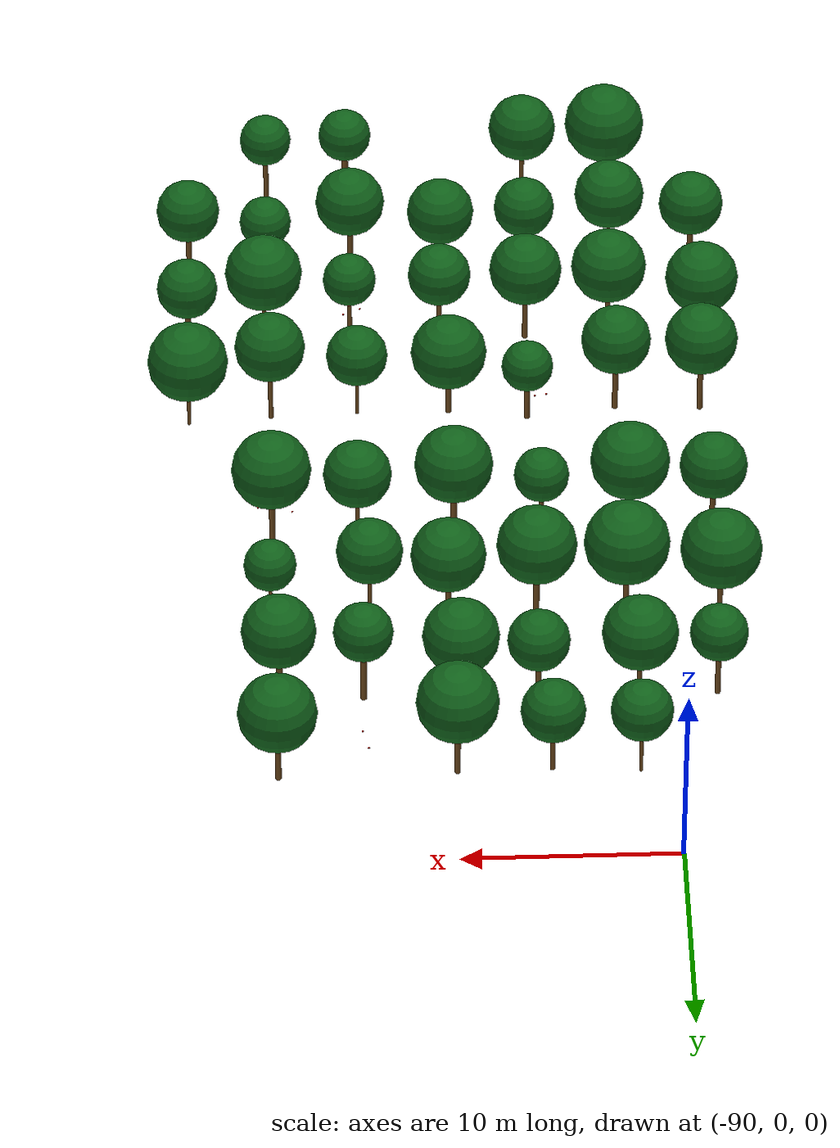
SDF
<sdf version="1.9">
 <world name="cheongsong_orchard">
  <model name="apple_tree_783">
   <static>true</static>
   <pose>-88.29 -43.25 0 0 0 0</pose>
   <link name="link">
    <collision name="trunk_col">
     <pose>0 0 1.25 0 0 0</pose>
     <geometry><cylinder><radius>0.147</radius><length>2.50</length></cylinder></geometry>
    </collision>
    <visual name="trunk_vis">
     <pose>0 0 1.25 0 0 0</pose>
     <geometry><cylinder><radius>0.147</radius><length>2.50</length></cylinder></geometry>
     <material><ambient>0.35 0.22 0.08 1</ambient><diffuse>0.45 0.30 0.12 1</diffuse></material>
    </visual>
    <collision name="canopy_col">
     <pose>0 0 4.37 0 0 0</pose>
     <geometry><sphere><radius>1.87</radius></sphere></geometry>
    </collision>
    <visual name="canopy_vis">
     <pose>0 0 4.37 0 0 0</pose>
     <geometry><sphere><radius>1.87</radius></sphere></geometry>
     <material><ambient>0.04 0.28 0.06 1</ambient><diffuse>0.06 0.38 0.10 1</diffuse></material>
    </visual>
   </link>
  </model>
  <model name="apple_tree_784">
   <static>true</static>
   <pose>-84.37 -42.99 0 0 0 0</pose>
   <link name="link">
    <collision name="trunk_col">
     <pose>0 0 1.42 0 0 0</pose>
     <geometry><cylinder><radius>0.114</radius><length>2.85</length></cylinder></geometry>
    </collision>
    <visual name="trunk_vis">
     <pose>0 0 1.42 0 0 0</pose>
     <geometry><cylinder><radius>0.114</radius><length>2.85</length></cylinder></geometry>
     <material><ambient>0.35 0.22 0.08 1</ambient><diffuse>0.45 0.30 0.12 1</diffuse></material>
    </visual>
    <collision name="canopy_col">
     <pose>0 0 4.43 0 0 0</pose>
     <geometry><sphere><radius>1.58</radius></sphere></geometry>
    </collision>
    <visual name="canopy_vis">
     <pose>0 0 4.43 0 0 0</pose>
     <geometry><sphere><radius>1.58</radius></sphere></geometry>
     <material><ambient>0.04 0.28 0.06 1</ambient><diffuse>0.06 0.38 0.10 1</diffuse></material>
    </visual>
   </link>
  </model>
  <model name="apple_tree_786">
   <static>true</static>
   <pose>-75.95 -43.21 0 0 0 0</pose>
   <link name="link">
    <collision name="trunk_col">
     <pose>0 0 1.37 0 0 0</pose>
     <geometry><cylinder><radius>0.145</radius><length>2.74</length></cylinder></geometry>
    </collision>
    <visual name="trunk_vis">
     <pose>0 0 1.37 0 0 0</pose>
     <geometry><cylinder><radius>0.145</radius><length>2.74</length></cylinder></geometry>
     <material><ambient>0.35 0.22 0.08 1</ambient><diffuse>0.45 0.30 0.12 1</diffuse></material>
    </visual>
    <collision name="canopy_col">
     <pose>0 0 3.99 0 0 0</pose>
     <geometry><sphere><radius>1.24</radius></sphere></geometry>
    </collision>
    <visual name="canopy_vis">
     <pose>0 0 3.99 0 0 0</pose>
     <geometry><sphere><radius>1.24</radius></sphere></geometry>
     <material><ambient>0.04 0.28 0.06 1</ambient><diffuse>0.06 0.38 0.10 1</diffuse></material>
    </visual>
   </link>
  </model>
  <model name="apple_tree_787">
   <static>true</static>
   <pose>-72.18 -43.15 0 0 0 0</pose>
   <link name="link">
    <collision name="trunk_col">
     <pose>0 0 1.31 0 0 0</pose>
     <geometry><cylinder><radius>0.119</radius><length>2.61</length></cylinder></geometry>
    </collision>
    <visual name="trunk_vis">
     <pose>0 0 1.31 0 0 0</pose>
     <geometry><cylinder><radius>0.119</radius><length>2.61</length></cylinder></geometry>
     <material><ambient>0.35 0.22 0.08 1</ambient><diffuse>0.45 0.30 0.12 1</diffuse></material>
    </visual>
    <collision name="canopy_col">
     <pose>0 0 3.83 0 0 0</pose>
     <geometry><sphere><radius>1.21</radius></sphere></geometry>
    </collision>
    <visual name="canopy_vis">
     <pose>0 0 3.83 0 0 0</pose>
     <geometry><sphere><radius>1.21</radius></sphere></geometry>
     <material><ambient>0.04 0.28 0.06 1</ambient><diffuse>0.06 0.38 0.10 1</diffuse></material>
    </visual>
   </link>
  </model>
  <model name="apple_tree_841">
   <static>true</static>
   <pose>-92.17 -38.23 0 0 0 0</pose>
   <link name="link">
    <collision name="trunk_col">
     <pose>0 0 1.12 0 0 0</pose>
     <geometry><cylinder><radius>0.136</radius><length>2.23</length></cylinder></geometry>
    </collision>
    <visual name="trunk_vis">
     <pose>0 0 1.12 0 0 0</pose>
     <geometry><cylinder><radius>0.136</radius><length>2.23</length></cylinder></geometry>
     <material><ambient>0.35 0.22 0.08 1</ambient><diffuse>0.45 0.30 0.12 1</diffuse></material>
    </visual>
    <collision name="canopy_col">
     <pose>0 0 3.74 0 0 0</pose>
     <geometry><sphere><radius>1.51</radius></sphere></geometry>
    </collision>
    <visual name="canopy_vis">
     <pose>0 0 3.74 0 0 0</pose>
     <geometry><sphere><radius>1.51</radius></sphere></geometry>
     <material><ambient>0.04 0.28 0.06 1</ambient><diffuse>0.06 0.38 0.10 1</diffuse></material>
    </visual>
   </link>
  </model>
  <model name="apple_tree_842">
   <static>true</static>
   <pose>-88.30 -38.17 0 0 0 0</pose>
   <link name="link">
    <collision name="trunk_col">
     <pose>0 0 1.44 0 0 0</pose>
     <geometry><cylinder><radius>0.087</radius><length>2.88</length></cylinder></geometry>
    </collision>
    <visual name="trunk_vis">
     <pose>0 0 1.44 0 0 0</pose>
     <geometry><cylinder><radius>0.087</radius><length>2.88</length></cylinder></geometry>
     <material><ambient>0.35 0.22 0.08 1</ambient><diffuse>0.45 0.30 0.12 1</diffuse></material>
    </visual>
    <collision name="canopy_col">
     <pose>0 0 4.51 0 0 0</pose>
     <geometry><sphere><radius>1.63</radius></sphere></geometry>
    </collision>
    <visual name="canopy_vis">
     <pose>0 0 4.51 0 0 0</pose>
     <geometry><sphere><radius>1.63</radius></sphere></geometry>
     <material><ambient>0.04 0.28 0.06 1</ambient><diffuse>0.06 0.38 0.10 1</diffuse></material>
    </visual>
   </link>
  </model>
  <model name="apple_tree_843">
   <static>true</static>
   <pose>-84.28 -37.98 0 0 0 0</pose>
   <link name="link">
    <collision name="trunk_col">
     <pose>0 0 1.27 0 0 0</pose>
     <geometry><cylinder><radius>0.126</radius><length>2.55</length></cylinder></geometry>
    </collision>
    <visual name="trunk_vis">
     <pose>0 0 1.27 0 0 0</pose>
     <geometry><cylinder><radius>0.126</radius><length>2.55</length></cylinder></geometry>
     <material><ambient>0.35 0.22 0.08 1</ambient><diffuse>0.45 0.30 0.12 1</diffuse></material>
    </visual>
    <collision name="canopy_col">
     <pose>0 0 3.96 0 0 0</pose>
     <geometry><sphere><radius>1.42</radius></sphere></geometry>
    </collision>
    <visual name="canopy_vis">
     <pose>0 0 3.96 0 0 0</pose>
     <geometry><sphere><radius>1.42</radius></sphere></geometry>
     <material><ambient>0.04 0.28 0.06 1</ambient><diffuse>0.06 0.38 0.10 1</diffuse></material>
    </visual>
   </link>
  </model>
  <model name="apple_tree_844">
   <static>true</static>
   <pose>-80.33 -38.01 0 0 0 0</pose>
   <link name="link">
    <collision name="trunk_col">
     <pose>0 0 1.10 0 0 0</pose>
     <geometry><cylinder><radius>0.121</radius><length>2.20</length></cylinder></geometry>
    </collision>
    <visual name="trunk_vis">
     <pose>0 0 1.10 0 0 0</pose>
     <geometry><cylinder><radius>0.121</radius><length>2.20</length></cylinder></geometry>
     <material><ambient>0.35 0.22 0.08 1</ambient><diffuse>0.45 0.30 0.12 1</diffuse></material>
    </visual>
    <collision name="canopy_col">
     <pose>0 0 3.77 0 0 0</pose>
     <geometry><sphere><radius>1.57</radius></sphere></geometry>
    </collision>
    <visual name="canopy_vis">
     <pose>0 0 3.77 0 0 0</pose>
     <geometry><sphere><radius>1.57</radius></sphere></geometry>
     <material><ambient>0.04 0.28 0.06 1</ambient><diffuse>0.06 0.38 0.10 1</diffuse></material>
    </visual>
   </link>
  </model>
  <model name="apple_tree_845">
   <static>true</static>
   <pose>-76.08 -38.34 0 0 0 0</pose>
   <link name="link">
    <collision name="trunk_col">
     <pose>0 0 1.30 0 0 0</pose>
     <geometry><cylinder><radius>0.134</radius><length>2.61</length></cylinder></geometry>
    </collision>
    <visual name="trunk_vis">
     <pose>0 0 1.30 0 0 0</pose>
     <geometry><cylinder><radius>0.134</radius><length>2.61</length></cylinder></geometry>
     <material><ambient>0.35 0.22 0.08 1</ambient><diffuse>0.45 0.30 0.12 1</diffuse></material>
    </visual>
    <collision name="canopy_col">
     <pose>0 0 4.22 0 0 0</pose>
     <geometry><sphere><radius>1.62</radius></sphere></geometry>
    </collision>
    <visual name="canopy_vis">
     <pose>0 0 4.22 0 0 0</pose>
     <geometry><sphere><radius>1.62</radius></sphere></geometry>
     <material><ambient>0.04 0.28 0.06 1</ambient><diffuse>0.06 0.38 0.10 1</diffuse></material>
    </visual>
   </link>
  </model>
  <model name="apple_tree_846">
   <static>true</static>
   <pose>-72.08 -37.89 0 0 0 0</pose>
   <link name="link">
    <collision name="trunk_col">
     <pose>0 0 1.13 0 0 0</pose>
     <geometry><cylinder><radius>0.081</radius><length>2.26</length></cylinder></geometry>
    </collision>
    <visual name="trunk_vis">
     <pose>0 0 1.13 0 0 0</pose>
     <geometry><cylinder><radius>0.081</radius><length>2.26</length></cylinder></geometry>
     <material><ambient>0.35 0.22 0.08 1</ambient><diffuse>0.45 0.30 0.12 1</diffuse></material>
    </visual>
    <collision name="canopy_col">
     <pose>0 0 3.46 0 0 0</pose>
     <geometry><sphere><radius>1.21</radius></sphere></geometry>
    </collision>
    <visual name="canopy_vis">
     <pose>0 0 3.46 0 0 0</pose>
     <geometry><sphere><radius>1.21</radius></sphere></geometry>
     <material><ambient>0.04 0.28 0.06 1</ambient><diffuse>0.06 0.38 0.10 1</diffuse></material>
    </visual>
   </link>
  </model>
  <model name="apple_tree_847">
   <static>true</static>
   <pose>-68.45 -38.24 0 0 0 0</pose>
   <link name="link">
    <collision name="trunk_col">
     <pose>0 0 1.23 0 0 0</pose>
     <geometry><cylinder><radius>0.128</radius><length>2.46</length></cylinder></geometry>
    </collision>
    <visual name="trunk_vis">
     <pose>0 0 1.23 0 0 0</pose>
     <geometry><cylinder><radius>0.128</radius><length>2.46</length></cylinder></geometry>
     <material><ambient>0.35 0.22 0.08 1</ambient><diffuse>0.45 0.30 0.12 1</diffuse></material>
    </visual>
    <collision name="canopy_col">
     <pose>0 0 3.94 0 0 0</pose>
     <geometry><sphere><radius>1.48</radius></sphere></geometry>
    </collision>
    <visual name="canopy_vis">
     <pose>0 0 3.94 0 0 0</pose>
     <geometry><sphere><radius>1.48</radius></sphere></geometry>
     <material><ambient>0.04 0.28 0.06 1</ambient><diffuse>0.06 0.38 0.10 1</diffuse></material>
    </visual>
   </link>
  </model>
  <model name="apple_tree_896">
   <static>true</static>
   <pose>-92.41 -33.07 0 0 0 0</pose>
   <link name="link">
    <collision name="trunk_col">
     <pose>0 0 1.07 0 0 0</pose>
     <geometry><cylinder><radius>0.141</radius><length>2.13</length></cylinder></geometry>
    </collision>
    <visual name="trunk_vis">
     <pose>0 0 1.07 0 0 0</pose>
     <geometry><cylinder><radius>0.141</radius><length>2.13</length></cylinder></geometry>
     <material><ambient>0.35 0.22 0.08 1</ambient><diffuse>0.45 0.30 0.12 1</diffuse></material>
    </visual>
    <collision name="canopy_col">
     <pose>0 0 3.83 0 0 0</pose>
     <geometry><sphere><radius>1.70</radius></sphere></geometry>
    </collision>
    <visual name="canopy_vis">
     <pose>0 0 3.83 0 0 0</pose>
     <geometry><sphere><radius>1.70</radius></sphere></geometry>
     <material><ambient>0.04 0.28 0.06 1</ambient><diffuse>0.06 0.38 0.10 1</diffuse></material>
    </visual>
   </link>
  </model>
  <model name="apple_tree_897">
   <static>true</static>
   <pose>-88.07 -33.49 0 0 0 0</pose>
   <link name="link">
    <collision name="trunk_col">
     <pose>0 0 1.28 0 0 0</pose>
     <geometry><cylinder><radius>0.107</radius><length>2.56</length></cylinder></geometry>
    </collision>
    <visual name="trunk_vis">
     <pose>0 0 1.28 0 0 0</pose>
     <geometry><cylinder><radius>0.107</radius><length>2.56</length></cylinder></geometry>
     <material><ambient>0.35 0.22 0.08 1</ambient><diffuse>0.45 0.30 0.12 1</diffuse></material>
    </visual>
    <collision name="canopy_col">
     <pose>0 0 4.31 0 0 0</pose>
     <geometry><sphere><radius>1.75</radius></sphere></geometry>
    </collision>
    <visual name="canopy_vis">
     <pose>0 0 4.31 0 0 0</pose>
     <geometry><sphere><radius>1.75</radius></sphere></geometry>
     <material><ambient>0.04 0.28 0.06 1</ambient><diffuse>0.06 0.38 0.10 1</diffuse></material>
    </visual>
   </link>
  </model>
  <model name="apple_tree_898">
   <static>true</static>
   <pose>-84.17 -33.31 0 0 0 0</pose>
   <link name="link">
    <collision name="trunk_col">
     <pose>0 0 1.34 0 0 0</pose>
     <geometry><cylinder><radius>0.129</radius><length>2.68</length></cylinder></geometry>
    </collision>
    <visual name="trunk_vis">
     <pose>0 0 1.34 0 0 0</pose>
     <geometry><cylinder><radius>0.129</radius><length>2.68</length></cylinder></geometry>
     <material><ambient>0.35 0.22 0.08 1</ambient><diffuse>0.45 0.30 0.12 1</diffuse></material>
    </visual>
    <collision name="canopy_col">
     <pose>0 0 4.37 0 0 0</pose>
     <geometry><sphere><radius>1.69</radius></sphere></geometry>
    </collision>
    <visual name="canopy_vis">
     <pose>0 0 4.37 0 0 0</pose>
     <geometry><sphere><radius>1.69</radius></sphere></geometry>
     <material><ambient>0.04 0.28 0.06 1</ambient><diffuse>0.06 0.38 0.10 1</diffuse></material>
    </visual>
   </link>
  </model>
  <model name="apple_tree_899">
   <static>true</static>
   <pose>-80.14 -33.37 0 0 0 0</pose>
   <link name="link">
    <collision name="trunk_col">
     <pose>0 0 1.31 0 0 0</pose>
     <geometry><cylinder><radius>0.123</radius><length>2.62</length></cylinder></geometry>
    </collision>
    <visual name="trunk_vis">
     <pose>0 0 1.31 0 0 0</pose>
     <geometry><cylinder><radius>0.123</radius><length>2.62</length></cylinder></geometry>
     <material><ambient>0.35 0.22 0.08 1</ambient><diffuse>0.45 0.30 0.12 1</diffuse></material>
    </visual>
    <collision name="canopy_col">
     <pose>0 0 4.09 0 0 0</pose>
     <geometry><sphere><radius>1.47</radius></sphere></geometry>
    </collision>
    <visual name="canopy_vis">
     <pose>0 0 4.09 0 0 0</pose>
     <geometry><sphere><radius>1.47</radius></sphere></geometry>
     <material><ambient>0.04 0.28 0.06 1</ambient><diffuse>0.06 0.38 0.10 1</diffuse></material>
    </visual>
   </link>
  </model>
  <model name="apple_tree_900">
   <static>true</static>
   <pose>-75.93 -33.18 0 0 0 0</pose>
   <link name="link">
    <collision name="trunk_col">
     <pose>0 0 1.42 0 0 0</pose>
     <geometry><cylinder><radius>0.105</radius><length>2.84</length></cylinder></geometry>
    </collision>
    <visual name="trunk_vis">
     <pose>0 0 1.42 0 0 0</pose>
     <geometry><cylinder><radius>0.105</radius><length>2.84</length></cylinder></geometry>
     <material><ambient>0.35 0.22 0.08 1</ambient><diffuse>0.45 0.30 0.12 1</diffuse></material>
    </visual>
    <collision name="canopy_col">
     <pose>0 0 4.08 0 0 0</pose>
     <geometry><sphere><radius>1.24</radius></sphere></geometry>
    </collision>
    <visual name="canopy_vis">
     <pose>0 0 4.08 0 0 0</pose>
     <geometry><sphere><radius>1.24</radius></sphere></geometry>
     <material><ambient>0.04 0.28 0.06 1</ambient><diffuse>0.06 0.38 0.10 1</diffuse></material>
    </visual>
   </link>
  </model>
  <model name="apple_tree_901">
   <static>true</static>
   <pose>-71.93 -33.14 0 0 0 0</pose>
   <link name="link">
    <collision name="trunk_col">
     <pose>0 0 1.44 0 0 0</pose>
     <geometry><cylinder><radius>0.095</radius><length>2.89</length></cylinder></geometry>
    </collision>
    <visual name="trunk_vis">
     <pose>0 0 1.44 0 0 0</pose>
     <geometry><cylinder><radius>0.095</radius><length>2.89</length></cylinder></geometry>
     <material><ambient>0.35 0.22 0.08 1</ambient><diffuse>0.45 0.30 0.12 1</diffuse></material>
    </visual>
    <collision name="canopy_col">
     <pose>0 0 4.68 0 0 0</pose>
     <geometry><sphere><radius>1.80</radius></sphere></geometry>
    </collision>
    <visual name="canopy_vis">
     <pose>0 0 4.68 0 0 0</pose>
     <geometry><sphere><radius>1.80</radius></sphere></geometry>
     <material><ambient>0.04 0.28 0.06 1</ambient><diffuse>0.06 0.38 0.10 1</diffuse></material>
    </visual>
   </link>
  </model>
  <model name="apple_tree_902">
   <static>true</static>
   <pose>-68.35 -33.28 0 0 0 0</pose>
   <link name="link">
    <collision name="trunk_col">
     <pose>0 0 1.11 0 0 0</pose>
     <geometry><cylinder><radius>0.128</radius><length>2.21</length></cylinder></geometry>
    </collision>
    <visual name="trunk_vis">
     <pose>0 0 1.11 0 0 0</pose>
     <geometry><cylinder><radius>0.128</radius><length>2.21</length></cylinder></geometry>
     <material><ambient>0.35 0.22 0.08 1</ambient><diffuse>0.45 0.30 0.12 1</diffuse></material>
    </visual>
    <collision name="canopy_col">
     <pose>0 0 3.63 0 0 0</pose>
     <geometry><sphere><radius>1.42</radius></sphere></geometry>
    </collision>
    <visual name="canopy_vis">
     <pose>0 0 3.63 0 0 0</pose>
     <geometry><sphere><radius>1.42</radius></sphere></geometry>
     <material><ambient>0.04 0.28 0.06 1</ambient><diffuse>0.06 0.38 0.10 1</diffuse></material>
    </visual>
   </link>
  </model>
  <model name="apple_tree_948">
   <static>true</static>
   <pose>-92.14 -28.28 0 0 0 0</pose>
   <link name="link">
    <collision name="trunk_col">
     <pose>0 0 1.39 0 0 0</pose>
     <geometry><cylinder><radius>0.135</radius><length>2.78</length></cylinder></geometry>
    </collision>
    <visual name="trunk_vis">
     <pose>0 0 1.39 0 0 0</pose>
     <geometry><cylinder><radius>0.135</radius><length>2.78</length></cylinder></geometry>
     <material><ambient>0.35 0.22 0.08 1</ambient><diffuse>0.45 0.30 0.12 1</diffuse></material>
    </visual>
    <collision name="canopy_col">
     <pose>0 0 4.47 0 0 0</pose>
     <geometry><sphere><radius>1.69</radius></sphere></geometry>
    </collision>
    <visual name="canopy_vis">
     <pose>0 0 4.47 0 0 0</pose>
     <geometry><sphere><radius>1.69</radius></sphere></geometry>
     <material><ambient>0.04 0.28 0.06 1</ambient><diffuse>0.06 0.38 0.10 1</diffuse></material>
    </visual>
   </link>
  </model>
  <model name="apple_tree_949">
   <static>true</static>
   <pose>-88.19 -28.45 0 0 0 0</pose>
   <link name="link">
    <collision name="trunk_col">
     <pose>0 0 1.37 0 0 0</pose>
     <geometry><cylinder><radius>0.133</radius><length>2.75</length></cylinder></geometry>
    </collision>
    <visual name="trunk_vis">
     <pose>0 0 1.37 0 0 0</pose>
     <geometry><cylinder><radius>0.133</radius><length>2.75</length></cylinder></geometry>
     <material><ambient>0.35 0.22 0.08 1</ambient><diffuse>0.45 0.30 0.12 1</diffuse></material>
    </visual>
    <collision name="canopy_col">
     <pose>0 0 4.37 0 0 0</pose>
     <geometry><sphere><radius>1.62</radius></sphere></geometry>
    </collision>
    <visual name="canopy_vis">
     <pose>0 0 4.37 0 0 0</pose>
     <geometry><sphere><radius>1.62</radius></sphere></geometry>
     <material><ambient>0.04 0.28 0.06 1</ambient><diffuse>0.06 0.38 0.10 1</diffuse></material>
    </visual>
   </link>
  </model>
  <model name="apple_tree_950">
   <static>true</static>
   <pose>-84.06 -27.91 0 0 0 0</pose>
   <link name="link">
    <collision name="trunk_col">
     <pose>0 0 1.06 0 0 0</pose>
     <geometry><cylinder><radius>0.133</radius><length>2.12</length></cylinder></geometry>
    </collision>
    <visual name="trunk_vis">
     <pose>0 0 1.06 0 0 0</pose>
     <geometry><cylinder><radius>0.133</radius><length>2.12</length></cylinder></geometry>
     <material><ambient>0.35 0.22 0.08 1</ambient><diffuse>0.45 0.30 0.12 1</diffuse></material>
    </visual>
    <collision name="canopy_col">
     <pose>0 0 3.32 0 0 0</pose>
     <geometry><sphere><radius>1.20</radius></sphere></geometry>
    </collision>
    <visual name="canopy_vis">
     <pose>0 0 3.32 0 0 0</pose>
     <geometry><sphere><radius>1.20</radius></sphere></geometry>
     <material><ambient>0.04 0.28 0.06 1</ambient><diffuse>0.06 0.38 0.10 1</diffuse></material>
    </visual>
   </link>
  </model>
  <model name="apple_tree_951">
   <static>true</static>
   <pose>-80.42 -28.42 0 0 0 0</pose>
   <link name="link">
    <collision name="trunk_col">
     <pose>0 0 1.04 0 0 0</pose>
     <geometry><cylinder><radius>0.133</radius><length>2.08</length></cylinder></geometry>
    </collision>
    <visual name="trunk_vis">
     <pose>0 0 1.04 0 0 0</pose>
     <geometry><cylinder><radius>0.133</radius><length>2.08</length></cylinder></geometry>
     <material><ambient>0.35 0.22 0.08 1</ambient><diffuse>0.45 0.30 0.12 1</diffuse></material>
    </visual>
    <collision name="canopy_col">
     <pose>0 0 3.85 0 0 0</pose>
     <geometry><sphere><radius>1.76</radius></sphere></geometry>
    </collision>
    <visual name="canopy_vis">
     <pose>0 0 3.85 0 0 0</pose>
     <geometry><sphere><radius>1.76</radius></sphere></geometry>
     <material><ambient>0.04 0.28 0.06 1</ambient><diffuse>0.06 0.38 0.10 1</diffuse></material>
    </visual>
   </link>
  </model>
  <model name="apple_tree_952">
   <static>true</static>
   <pose>-76.16 -28.47 0 0 0 0</pose>
   <link name="link">
    <collision name="trunk_col">
     <pose>0 0 1.13 0 0 0</pose>
     <geometry><cylinder><radius>0.088</radius><length>2.27</length></cylinder></geometry>
    </collision>
    <visual name="trunk_vis">
     <pose>0 0 1.13 0 0 0</pose>
     <geometry><cylinder><radius>0.088</radius><length>2.27</length></cylinder></geometry>
     <material><ambient>0.35 0.22 0.08 1</ambient><diffuse>0.45 0.30 0.12 1</diffuse></material>
    </visual>
    <collision name="canopy_col">
     <pose>0 0 3.70 0 0 0</pose>
     <geometry><sphere><radius>1.43</radius></sphere></geometry>
    </collision>
    <visual name="canopy_vis">
     <pose>0 0 3.70 0 0 0</pose>
     <geometry><sphere><radius>1.43</radius></sphere></geometry>
     <material><ambient>0.04 0.28 0.06 1</ambient><diffuse>0.06 0.38 0.10 1</diffuse></material>
    </visual>
   </link>
  </model>
  <model name="apple_tree_953">
   <static>true</static>
   <pose>-72.13 -28.30 0 0 0 0</pose>
   <link name="link">
    <collision name="trunk_col">
     <pose>0 0 1.45 0 0 0</pose>
     <geometry><cylinder><radius>0.111</radius><length>2.90</length></cylinder></geometry>
    </collision>
    <visual name="trunk_vis">
     <pose>0 0 1.45 0 0 0</pose>
     <geometry><cylinder><radius>0.111</radius><length>2.90</length></cylinder></geometry>
     <material><ambient>0.35 0.22 0.08 1</ambient><diffuse>0.45 0.30 0.12 1</diffuse></material>
    </visual>
    <collision name="canopy_col">
     <pose>0 0 4.54 0 0 0</pose>
     <geometry><sphere><radius>1.64</radius></sphere></geometry>
    </collision>
    <visual name="canopy_vis">
     <pose>0 0 4.54 0 0 0</pose>
     <geometry><sphere><radius>1.64</radius></sphere></geometry>
     <material><ambient>0.04 0.28 0.06 1</ambient><diffuse>0.06 0.38 0.10 1</diffuse></material>
    </visual>
   </link>
  </model>
  <model name="apple_tree_954">
   <static>true</static>
   <pose>-68.32 -27.98 0 0 0 0</pose>
   <link name="link">
    <collision name="trunk_col">
     <pose>0 0 1.07 0 0 0</pose>
     <geometry><cylinder><radius>0.085</radius><length>2.13</length></cylinder></geometry>
    </collision>
    <visual name="trunk_vis">
     <pose>0 0 1.07 0 0 0</pose>
     <geometry><cylinder><radius>0.085</radius><length>2.13</length></cylinder></geometry>
     <material><ambient>0.35 0.22 0.08 1</ambient><diffuse>0.45 0.30 0.12 1</diffuse></material>
    </visual>
    <collision name="canopy_col">
     <pose>0 0 4.01 0 0 0</pose>
     <geometry><sphere><radius>1.87</radius></sphere></geometry>
    </collision>
    <visual name="canopy_vis">
     <pose>0 0 4.01 0 0 0</pose>
     <geometry><sphere><radius>1.87</radius></sphere></geometry>
     <material><ambient>0.04 0.28 0.06 1</ambient><diffuse>0.06 0.38 0.10 1</diffuse></material>
    </visual>
   </link>
  </model>
  <model name="apple_tree_1005">
   <static>true</static>
   <pose>-92.28 -20.13 0 0 0 0</pose>
   <link name="link">
    <collision name="trunk_col">
     <pose>0 0 1.37 0 0 0</pose>
     <geometry><cylinder><radius>0.132</radius><length>2.74</length></cylinder></geometry>
    </collision>
    <visual name="trunk_vis">
     <pose>0 0 1.37 0 0 0</pose>
     <geometry><cylinder><radius>0.132</radius><length>2.74</length></cylinder></geometry>
     <material><ambient>0.35 0.22 0.08 1</ambient><diffuse>0.45 0.30 0.12 1</diffuse></material>
    </visual>
    <collision name="canopy_col">
     <pose>0 0 4.31 0 0 0</pose>
     <geometry><sphere><radius>1.56</radius></sphere></geometry>
    </collision>
    <visual name="canopy_vis">
     <pose>0 0 4.31 0 0 0</pose>
     <geometry><sphere><radius>1.56</radius></sphere></geometry>
     <material><ambient>0.04 0.28 0.06 1</ambient><diffuse>0.06 0.38 0.10 1</diffuse></material>
    </visual>
   </link>
  </model>
  <model name="apple_tree_1006">
   <static>true</static>
   <pose>-88.47 -20.46 0 0 0 0</pose>
   <link name="link">
    <collision name="trunk_col">
     <pose>0 0 1.29 0 0 0</pose>
     <geometry><cylinder><radius>0.124</radius><length>2.58</length></cylinder></geometry>
    </collision>
    <visual name="trunk_vis">
     <pose>0 0 1.29 0 0 0</pose>
     <geometry><cylinder><radius>0.124</radius><length>2.58</length></cylinder></geometry>
     <material><ambient>0.35 0.22 0.08 1</ambient><diffuse>0.45 0.30 0.12 1</diffuse></material>
    </visual>
    <collision name="canopy_col">
     <pose>0 0 4.41 0 0 0</pose>
     <geometry><sphere><radius>1.83</radius></sphere></geometry>
    </collision>
    <visual name="canopy_vis">
     <pose>0 0 4.41 0 0 0</pose>
     <geometry><sphere><radius>1.83</radius></sphere></geometry>
     <material><ambient>0.04 0.28 0.06 1</ambient><diffuse>0.06 0.38 0.10 1</diffuse></material>
    </visual>
   </link>
  </model>
  <model name="apple_tree_1007">
   <static>true</static>
   <pose>-84.41 -20.25 0 0 0 0</pose>
   <link name="link">
    <collision name="trunk_col">
     <pose>0 0 1.28 0 0 0</pose>
     <geometry><cylinder><radius>0.102</radius><length>2.56</length></cylinder></geometry>
    </collision>
    <visual name="trunk_vis">
     <pose>0 0 1.28 0 0 0</pose>
     <geometry><cylinder><radius>0.102</radius><length>2.56</length></cylinder></geometry>
     <material><ambient>0.35 0.22 0.08 1</ambient><diffuse>0.45 0.30 0.12 1</diffuse></material>
    </visual>
    <collision name="canopy_col">
     <pose>0 0 3.83 0 0 0</pose>
     <geometry><sphere><radius>1.27</radius></sphere></geometry>
    </collision>
    <visual name="canopy_vis">
     <pose>0 0 3.83 0 0 0</pose>
     <geometry><sphere><radius>1.27</radius></sphere></geometry>
     <material><ambient>0.04 0.28 0.06 1</ambient><diffuse>0.06 0.38 0.10 1</diffuse></material>
    </visual>
   </link>
  </model>
  <model name="apple_tree_1008">
   <static>true</static>
   <pose>-80.39 -20.18 0 0 0 0</pose>
   <link name="link">
    <collision name="trunk_col">
     <pose>0 0 1.45 0 0 0</pose>
     <geometry><cylinder><radius>0.138</radius><length>2.90</length></cylinder></geometry>
    </collision>
    <visual name="trunk_vis">
     <pose>0 0 1.45 0 0 0</pose>
     <geometry><cylinder><radius>0.138</radius><length>2.90</length></cylinder></geometry>
     <material><ambient>0.35 0.22 0.08 1</ambient><diffuse>0.45 0.30 0.12 1</diffuse></material>
    </visual>
    <collision name="canopy_col">
     <pose>0 0 4.71 0 0 0</pose>
     <geometry><sphere><radius>1.81</radius></sphere></geometry>
    </collision>
    <visual name="canopy_vis">
     <pose>0 0 4.71 0 0 0</pose>
     <geometry><sphere><radius>1.81</radius></sphere></geometry>
     <material><ambient>0.04 0.28 0.06 1</ambient><diffuse>0.06 0.38 0.10 1</diffuse></material>
    </visual>
   </link>
  </model>
  <model name="apple_tree_1009">
   <static>true</static>
   <pose>-75.98 -20.08 0 0 0 0</pose>
   <link name="link">
    <collision name="trunk_col">
     <pose>0 0 1.36 0 0 0</pose>
     <geometry><cylinder><radius>0.102</radius><length>2.72</length></cylinder></geometry>
    </collision>
    <visual name="trunk_vis">
     <pose>0 0 1.36 0 0 0</pose>
     <geometry><cylinder><radius>0.102</radius><length>2.72</length></cylinder></geometry>
     <material><ambient>0.35 0.22 0.08 1</ambient><diffuse>0.45 0.30 0.12 1</diffuse></material>
    </visual>
    <collision name="canopy_col">
     <pose>0 0 4.31 0 0 0</pose>
     <geometry><sphere><radius>1.58</radius></sphere></geometry>
    </collision>
    <visual name="canopy_vis">
     <pose>0 0 4.31 0 0 0</pose>
     <geometry><sphere><radius>1.58</radius></sphere></geometry>
     <material><ambient>0.04 0.28 0.06 1</ambient><diffuse>0.06 0.38 0.10 1</diffuse></material>
    </visual>
   </link>
  </model>
  <model name="apple_tree_1010">
   <static>true</static>
   <pose>-72.05 -20.33 0 0 0 0</pose>
   <link name="link">
    <collision name="trunk_col">
     <pose>0 0 1.31 0 0 0</pose>
     <geometry><cylinder><radius>0.138</radius><length>2.62</length></cylinder></geometry>
    </collision>
    <visual name="trunk_vis">
     <pose>0 0 1.31 0 0 0</pose>
     <geometry><cylinder><radius>0.138</radius><length>2.62</length></cylinder></geometry>
     <material><ambient>0.35 0.22 0.08 1</ambient><diffuse>0.45 0.30 0.12 1</diffuse></material>
    </visual>
    <collision name="canopy_col">
     <pose>0 0 4.46 0 0 0</pose>
     <geometry><sphere><radius>1.84</radius></sphere></geometry>
    </collision>
    <visual name="canopy_vis">
     <pose>0 0 4.46 0 0 0</pose>
     <geometry><sphere><radius>1.84</radius></sphere></geometry>
     <material><ambient>0.04 0.28 0.06 1</ambient><diffuse>0.06 0.38 0.10 1</diffuse></material>
    </visual>
   </link>
  </model>
  <model name="apple_tree_1064">
   <static>true</static>
   <pose>-92.36 -14.94 0 0 0 0</pose>
   <link name="link">
    <collision name="trunk_col">
     <pose>0 0 1.14 0 0 0</pose>
     <geometry><cylinder><radius>0.122</radius><length>2.28</length></cylinder></geometry>
    </collision>
    <visual name="trunk_vis">
     <pose>0 0 1.14 0 0 0</pose>
     <geometry><cylinder><radius>0.122</radius><length>2.28</length></cylinder></geometry>
     <material><ambient>0.35 0.22 0.08 1</ambient><diffuse>0.45 0.30 0.12 1</diffuse></material>
    </visual>
    <collision name="canopy_col">
     <pose>0 0 4.15 0 0 0</pose>
     <geometry><sphere><radius>1.87</radius></sphere></geometry>
    </collision>
    <visual name="canopy_vis">
     <pose>0 0 4.15 0 0 0</pose>
     <geometry><sphere><radius>1.87</radius></sphere></geometry>
     <material><ambient>0.04 0.28 0.06 1</ambient><diffuse>0.06 0.38 0.10 1</diffuse></material>
    </visual>
   </link>
  </model>
  <model name="apple_tree_1065">
   <static>true</static>
   <pose>-88.10 -15.41 0 0 0 0</pose>
   <link name="link">
    <collision name="trunk_col">
     <pose>0 0 1.12 0 0 0</pose>
     <geometry><cylinder><radius>0.130</radius><length>2.24</length></cylinder></geometry>
    </collision>
    <visual name="trunk_vis">
     <pose>0 0 1.12 0 0 0</pose>
     <geometry><cylinder><radius>0.130</radius><length>2.24</length></cylinder></geometry>
     <material><ambient>0.35 0.22 0.08 1</ambient><diffuse>0.45 0.30 0.12 1</diffuse></material>
    </visual>
    <collision name="canopy_col">
     <pose>0 0 4.20 0 0 0</pose>
     <geometry><sphere><radius>1.97</radius></sphere></geometry>
    </collision>
    <visual name="canopy_vis">
     <pose>0 0 4.20 0 0 0</pose>
     <geometry><sphere><radius>1.97</radius></sphere></geometry>
     <material><ambient>0.04 0.28 0.06 1</ambient><diffuse>0.06 0.38 0.10 1</diffuse></material>
    </visual>
   </link>
  </model>
  <model name="apple_tree_1066">
   <static>true</static>
   <pose>-83.99 -15.09 0 0 0 0</pose>
   <link name="link">
    <collision name="trunk_col">
     <pose>0 0 1.33 0 0 0</pose>
     <geometry><cylinder><radius>0.136</radius><length>2.67</length></cylinder></geometry>
    </collision>
    <visual name="trunk_vis">
     <pose>0 0 1.33 0 0 0</pose>
     <geometry><cylinder><radius>0.136</radius><length>2.67</length></cylinder></geometry>
     <material><ambient>0.35 0.22 0.08 1</ambient><diffuse>0.45 0.30 0.12 1</diffuse></material>
    </visual>
    <collision name="canopy_col">
     <pose>0 0 4.51 0 0 0</pose>
     <geometry><sphere><radius>1.84</radius></sphere></geometry>
    </collision>
    <visual name="canopy_vis">
     <pose>0 0 4.51 0 0 0</pose>
     <geometry><sphere><radius>1.84</radius></sphere></geometry>
     <material><ambient>0.04 0.28 0.06 1</ambient><diffuse>0.06 0.38 0.10 1</diffuse></material>
    </visual>
   </link>
  </model>
  <model name="apple_tree_1067">
   <static>true</static>
   <pose>-79.98 -15.12 0 0 0 0</pose>
   <link name="link">
    <collision name="trunk_col">
     <pose>0 0 1.11 0 0 0</pose>
     <geometry><cylinder><radius>0.132</radius><length>2.23</length></cylinder></geometry>
    </collision>
    <visual name="trunk_vis">
     <pose>0 0 1.11 0 0 0</pose>
     <geometry><cylinder><radius>0.132</radius><length>2.23</length></cylinder></geometry>
     <material><ambient>0.35 0.22 0.08 1</ambient><diffuse>0.45 0.30 0.12 1</diffuse></material>
    </visual>
    <collision name="canopy_col">
     <pose>0 0 3.96 0 0 0</pose>
     <geometry><sphere><radius>1.73</radius></sphere></geometry>
    </collision>
    <visual name="canopy_vis">
     <pose>0 0 3.96 0 0 0</pose>
     <geometry><sphere><radius>1.73</radius></sphere></geometry>
     <material><ambient>0.04 0.28 0.06 1</ambient><diffuse>0.06 0.38 0.10 1</diffuse></material>
    </visual>
   </link>
  </model>
  <model name="apple_tree_1068">
   <static>true</static>
   <pose>-76.41 -15.37 0 0 0 0</pose>
   <link name="link">
    <collision name="trunk_col">
     <pose>0 0 1.27 0 0 0</pose>
     <geometry><cylinder><radius>0.087</radius><length>2.54</length></cylinder></geometry>
    </collision>
    <visual name="trunk_vis">
     <pose>0 0 1.27 0 0 0</pose>
     <geometry><cylinder><radius>0.087</radius><length>2.54</length></cylinder></geometry>
     <material><ambient>0.35 0.22 0.08 1</ambient><diffuse>0.45 0.30 0.12 1</diffuse></material>
    </visual>
    <collision name="canopy_col">
     <pose>0 0 4.07 0 0 0</pose>
     <geometry><sphere><radius>1.53</radius></sphere></geometry>
    </collision>
    <visual name="canopy_vis">
     <pose>0 0 4.07 0 0 0</pose>
     <geometry><sphere><radius>1.53</radius></sphere></geometry>
     <material><ambient>0.04 0.28 0.06 1</ambient><diffuse>0.06 0.38 0.10 1</diffuse></material>
    </visual>
   </link>
  </model>
  <model name="apple_tree_1069">
   <static>true</static>
   <pose>-71.89 -15.31 0 0 0 0</pose>
   <link name="link">
    <collision name="trunk_col">
     <pose>0 0 1.08 0 0 0</pose>
     <geometry><cylinder><radius>0.083</radius><length>2.15</length></cylinder></geometry>
    </collision>
    <visual name="trunk_vis">
     <pose>0 0 1.08 0 0 0</pose>
     <geometry><cylinder><radius>0.083</radius><length>2.15</length></cylinder></geometry>
     <material><ambient>0.35 0.22 0.08 1</ambient><diffuse>0.45 0.30 0.12 1</diffuse></material>
    </visual>
    <collision name="canopy_col">
     <pose>0 0 3.37 0 0 0</pose>
     <geometry><sphere><radius>1.21</radius></sphere></geometry>
    </collision>
    <visual name="canopy_vis">
     <pose>0 0 3.37 0 0 0</pose>
     <geometry><sphere><radius>1.21</radius></sphere></geometry>
     <material><ambient>0.04 0.28 0.06 1</ambient><diffuse>0.06 0.38 0.10 1</diffuse></material>
    </visual>
   </link>
  </model>
  <model name="apple_tree_1121">
   <static>true</static>
   <pose>-92.00 -9.91 0 0 0 0</pose>
   <link name="link">
    <collision name="trunk_col">
     <pose>0 0 1.28 0 0 0</pose>
     <geometry><cylinder><radius>0.126</radius><length>2.56</length></cylinder></geometry>
    </collision>
    <visual name="trunk_vis">
     <pose>0 0 1.28 0 0 0</pose>
     <geometry><cylinder><radius>0.126</radius><length>2.56</length></cylinder></geometry>
     <material><ambient>0.35 0.22 0.08 1</ambient><diffuse>0.45 0.30 0.12 1</diffuse></material>
    </visual>
    <collision name="canopy_col">
     <pose>0 0 3.89 0 0 0</pose>
     <geometry><sphere><radius>1.33</radius></sphere></geometry>
    </collision>
    <visual name="canopy_vis">
     <pose>0 0 3.89 0 0 0</pose>
     <geometry><sphere><radius>1.33</radius></sphere></geometry>
     <material><ambient>0.04 0.28 0.06 1</ambient><diffuse>0.06 0.38 0.10 1</diffuse></material>
    </visual>
   </link>
  </model>
  <model name="apple_tree_1122">
   <static>true</static>
   <pose>-88.45 -9.94 0 0 0 0</pose>
   <link name="link">
    <collision name="trunk_col">
     <pose>0 0 1.11 0 0 0</pose>
     <geometry><cylinder><radius>0.098</radius><length>2.22</length></cylinder></geometry>
    </collision>
    <visual name="trunk_vis">
     <pose>0 0 1.11 0 0 0</pose>
     <geometry><cylinder><radius>0.098</radius><length>2.22</length></cylinder></geometry>
     <material><ambient>0.35 0.22 0.08 1</ambient><diffuse>0.45 0.30 0.12 1</diffuse></material>
    </visual>
    <collision name="canopy_col">
     <pose>0 0 3.96 0 0 0</pose>
     <geometry><sphere><radius>1.74</radius></sphere></geometry>
    </collision>
    <visual name="canopy_vis">
     <pose>0 0 3.96 0 0 0</pose>
     <geometry><sphere><radius>1.74</radius></sphere></geometry>
     <material><ambient>0.04 0.28 0.06 1</ambient><diffuse>0.06 0.38 0.10 1</diffuse></material>
    </visual>
   </link>
  </model>
  <model name="apple_tree_1123">
   <static>true</static>
   <pose>-83.89 -9.98 0 0 0 0</pose>
   <link name="link">
    <collision name="trunk_col">
     <pose>0 0 1.08 0 0 0</pose>
     <geometry><cylinder><radius>0.139</radius><length>2.16</length></cylinder></geometry>
    </collision>
    <visual name="trunk_vis">
     <pose>0 0 1.08 0 0 0</pose>
     <geometry><cylinder><radius>0.139</radius><length>2.16</length></cylinder></geometry>
     <material><ambient>0.35 0.22 0.08 1</ambient><diffuse>0.45 0.30 0.12 1</diffuse></material>
    </visual>
    <collision name="canopy_col">
     <pose>0 0 3.58 0 0 0</pose>
     <geometry><sphere><radius>1.43</radius></sphere></geometry>
    </collision>
    <visual name="canopy_vis">
     <pose>0 0 3.58 0 0 0</pose>
     <geometry><sphere><radius>1.43</radius></sphere></geometry>
     <material><ambient>0.04 0.28 0.06 1</ambient><diffuse>0.06 0.38 0.10 1</diffuse></material>
    </visual>
   </link>
  </model>
  <model name="apple_tree_1124">
   <static>true</static>
   <pose>-80.39 -10.17 0 0 0 0</pose>
   <link name="link">
    <collision name="trunk_col">
     <pose>0 0 1.01 0 0 0</pose>
     <geometry><cylinder><radius>0.086</radius><length>2.02</length></cylinder></geometry>
    </collision>
    <visual name="trunk_vis">
     <pose>0 0 1.01 0 0 0</pose>
     <geometry><cylinder><radius>0.086</radius><length>2.02</length></cylinder></geometry>
     <material><ambient>0.35 0.22 0.08 1</ambient><diffuse>0.45 0.30 0.12 1</diffuse></material>
    </visual>
    <collision name="canopy_col">
     <pose>0 0 3.78 0 0 0</pose>
     <geometry><sphere><radius>1.76</radius></sphere></geometry>
    </collision>
    <visual name="canopy_vis">
     <pose>0 0 3.78 0 0 0</pose>
     <geometry><sphere><radius>1.76</radius></sphere></geometry>
     <material><ambient>0.04 0.28 0.06 1</ambient><diffuse>0.06 0.38 0.10 1</diffuse></material>
    </visual>
   </link>
  </model>
  <model name="apple_tree_1125">
   <static>true</static>
   <pose>-75.99 -10.05 0 0 0 0</pose>
   <link name="link">
    <collision name="trunk_col">
     <pose>0 0 1.46 0 0 0</pose>
     <geometry><cylinder><radius>0.141</radius><length>2.92</length></cylinder></geometry>
    </collision>
    <visual name="trunk_vis">
     <pose>0 0 1.46 0 0 0</pose>
     <geometry><cylinder><radius>0.141</radius><length>2.92</length></cylinder></geometry>
     <material><ambient>0.35 0.22 0.08 1</ambient><diffuse>0.45 0.30 0.12 1</diffuse></material>
    </visual>
    <collision name="canopy_col">
     <pose>0 0 4.29 0 0 0</pose>
     <geometry><sphere><radius>1.37</radius></sphere></geometry>
    </collision>
    <visual name="canopy_vis">
     <pose>0 0 4.29 0 0 0</pose>
     <geometry><sphere><radius>1.37</radius></sphere></geometry>
     <material><ambient>0.04 0.28 0.06 1</ambient><diffuse>0.06 0.38 0.10 1</diffuse></material>
    </visual>
   </link>
  </model>
  <model name="apple_tree_1126">
   <static>true</static>
   <pose>-72.19 -10.01 0 0 0 0</pose>
   <link name="link">
    <collision name="trunk_col">
     <pose>0 0 1.41 0 0 0</pose>
     <geometry><cylinder><radius>0.146</radius><length>2.81</length></cylinder></geometry>
    </collision>
    <visual name="trunk_vis">
     <pose>0 0 1.41 0 0 0</pose>
     <geometry><cylinder><radius>0.146</radius><length>2.81</length></cylinder></geometry>
     <material><ambient>0.35 0.22 0.08 1</ambient><diffuse>0.45 0.30 0.12 1</diffuse></material>
    </visual>
    <collision name="canopy_col">
     <pose>0 0 4.52 0 0 0</pose>
     <geometry><sphere><radius>1.71</radius></sphere></geometry>
    </collision>
    <visual name="canopy_vis">
     <pose>0 0 4.52 0 0 0</pose>
     <geometry><sphere><radius>1.71</radius></sphere></geometry>
     <material><ambient>0.04 0.28 0.06 1</ambient><diffuse>0.06 0.38 0.10 1</diffuse></material>
    </visual>
   </link>
  </model>
  <model name="apple_tree_1177">
   <static>true</static>
   <pose>-88.31 -5.19 0 0 0 0</pose>
   <link name="link">
    <collision name="trunk_col">
     <pose>0 0 1.24 0 0 0</pose>
     <geometry><cylinder><radius>0.085</radius><length>2.48</length></cylinder></geometry>
    </collision>
    <visual name="trunk_vis">
     <pose>0 0 1.24 0 0 0</pose>
     <geometry><cylinder><radius>0.085</radius><length>2.48</length></cylinder></geometry>
     <material><ambient>0.35 0.22 0.08 1</ambient><diffuse>0.45 0.30 0.12 1</diffuse></material>
    </visual>
    <collision name="canopy_col">
     <pose>0 0 3.90 0 0 0</pose>
     <geometry><sphere><radius>1.42</radius></sphere></geometry>
    </collision>
    <visual name="canopy_vis">
     <pose>0 0 3.90 0 0 0</pose>
     <geometry><sphere><radius>1.42</radius></sphere></geometry>
     <material><ambient>0.04 0.28 0.06 1</ambient><diffuse>0.06 0.38 0.10 1</diffuse></material>
    </visual>
   </link>
  </model>
  <model name="apple_tree_1178">
   <static>true</static>
   <pose>-84.35 -5.42 0 0 0 0</pose>
   <link name="link">
    <collision name="trunk_col">
     <pose>0 0 1.15 0 0 0</pose>
     <geometry><cylinder><radius>0.118</radius><length>2.30</length></cylinder></geometry>
    </collision>
    <visual name="trunk_vis">
     <pose>0 0 1.15 0 0 0</pose>
     <geometry><cylinder><radius>0.118</radius><length>2.30</length></cylinder></geometry>
     <material><ambient>0.35 0.22 0.08 1</ambient><diffuse>0.45 0.30 0.12 1</diffuse></material>
    </visual>
    <collision name="canopy_col">
     <pose>0 0 3.77 0 0 0</pose>
     <geometry><sphere><radius>1.47</radius></sphere></geometry>
    </collision>
    <visual name="canopy_vis">
     <pose>0 0 3.77 0 0 0</pose>
     <geometry><sphere><radius>1.47</radius></sphere></geometry>
     <material><ambient>0.04 0.28 0.06 1</ambient><diffuse>0.06 0.38 0.10 1</diffuse></material>
    </visual>
   </link>
  </model>
  <model name="apple_tree_1179">
   <static>true</static>
   <pose>-80.08 -5.34 0 0 0 0</pose>
   <link name="link">
    <collision name="trunk_col">
     <pose>0 0 1.34 0 0 0</pose>
     <geometry><cylinder><radius>0.134</radius><length>2.68</length></cylinder></geometry>
    </collision>
    <visual name="trunk_vis">
     <pose>0 0 1.34 0 0 0</pose>
     <geometry><cylinder><radius>0.134</radius><length>2.68</length></cylinder></geometry>
     <material><ambient>0.35 0.22 0.08 1</ambient><diffuse>0.45 0.30 0.12 1</diffuse></material>
    </visual>
    <collision name="canopy_col">
     <pose>0 0 4.55 0 0 0</pose>
     <geometry><sphere><radius>1.88</radius></sphere></geometry>
    </collision>
    <visual name="canopy_vis">
     <pose>0 0 4.55 0 0 0</pose>
     <geometry><sphere><radius>1.88</radius></sphere></geometry>
     <material><ambient>0.04 0.28 0.06 1</ambient><diffuse>0.06 0.38 0.10 1</diffuse></material>
    </visual>
   </link>
  </model>
  <model name="apple_tree_1181">
   <static>true</static>
   <pose>-72.04 -5.20 0 0 0 0</pose>
   <link name="link">
    <collision name="trunk_col">
     <pose>0 0 1.23 0 0 0</pose>
     <geometry><cylinder><radius>0.135</radius><length>2.45</length></cylinder></geometry>
    </collision>
    <visual name="trunk_vis">
     <pose>0 0 1.23 0 0 0</pose>
     <geometry><cylinder><radius>0.135</radius><length>2.45</length></cylinder></geometry>
     <material><ambient>0.35 0.22 0.08 1</ambient><diffuse>0.45 0.30 0.12 1</diffuse></material>
    </visual>
    <collision name="canopy_col">
     <pose>0 0 4.26 0 0 0</pose>
     <geometry><sphere><radius>1.81</radius></sphere></geometry>
    </collision>
    <visual name="canopy_vis">
     <pose>0 0 4.26 0 0 0</pose>
     <geometry><sphere><radius>1.81</radius></sphere></geometry>
     <material><ambient>0.04 0.28 0.06 1</ambient><diffuse>0.06 0.38 0.10 1</diffuse></material>
    </visual>
   </link>
  </model>
  <model name="apple_900_0">
   <static>true</static>
   <pose>-76.41 -32.64 2.66 0 0 0</pose>
   <link name="link">
    <visual name="visual">
     <geometry><sphere><radius>0.04</radius></sphere></geometry>
     <material><ambient>0.7 0.05 0.02 1</ambient><diffuse>0.9 0.10 0.05 1</diffuse></material>
    </visual>
   </link>
  </model>
  <model name="apple_900_1">
   <static>true</static>
   <pose>-75.62 -32.57 2.40 0 0 0</pose>
   <link name="link">
    <visual name="visual">
     <geometry><sphere><radius>0.04</radius></sphere></geometry>
     <material><ambient>0.7 0.05 0.02 1</ambient><diffuse>0.9 0.10 0.05 1</diffuse></material>
    </visual>
   </link>
  </model>
  <model name="apple_900_2">
   <static>true</static>
   <pose>-76.04 -33.61 3.19 0 0 0</pose>
   <link name="link">
    <visual name="visual">
     <geometry><sphere><radius>0.04</radius></sphere></geometry>
     <material><ambient>0.7 0.05 0.02 1</ambient><diffuse>0.9 0.10 0.05 1</diffuse></material>
    </visual>
   </link>
  </model>
  <model name="apple_900_3">
   <static>true</static>
   <pose>-75.90 -32.80 2.76 0 0 0</pose>
   <link name="link">
    <visual name="visual">
     <geometry><sphere><radius>0.04</radius></sphere></geometry>
     <material><ambient>0.7 0.05 0.02 1</ambient><diffuse>0.9 0.10 0.05 1</diffuse></material>
    </visual>
   </link>
  </model>
  <model name="apple_950_0">
   <static>true</static>
   <pose>-83.70 -27.65 2.06 0 0 0</pose>
   <link name="link">
    <visual name="visual">
     <geometry><sphere><radius>0.04</radius></sphere></geometry>
     <material><ambient>0.7 0.05 0.02 1</ambient><diffuse>0.9 0.10 0.05 1</diffuse></material>
    </visual>
   </link>
  </model>
  <model name="apple_950_1">
   <static>true</static>
   <pose>-84.20 -28.43 2.13 0 0 0</pose>
   <link name="link">
    <visual name="visual">
     <geometry><sphere><radius>0.04</radius></sphere></geometry>
     <material><ambient>0.7 0.05 0.02 1</ambient><diffuse>0.9 0.10 0.05 1</diffuse></material>
    </visual>
   </link>
  </model>
  <model name="apple_950_2">
   <static>true</static>
   <pose>-84.93 -27.57 1.79 0 0 0</pose>
   <link name="link">
    <visual name="visual">
     <geometry><sphere><radius>0.04</radius></sphere></geometry>
     <material><ambient>0.7 0.05 0.02 1</ambient><diffuse>0.9 0.10 0.05 1</diffuse></material>
    </visual>
   </link>
  </model>
  <model name="apple_950_3">
   <static>true</static>
   <pose>-84.40 -27.47 1.82 0 0 0</pose>
   <link name="link">
    <visual name="visual">
     <geometry><sphere><radius>0.04</radius></sphere></geometry>
     <material><ambient>0.7 0.05 0.02 1</ambient><diffuse>0.9 0.10 0.05 1</diffuse></material>
    </visual>
   </link>
  </model>
  <model name="apple_950_4">
   <static>true</static>
   <pose>-84.01 -27.54 2.47 0 0 0</pose>
   <link name="link">
    <visual name="visual">
     <geometry><sphere><radius>0.04</radius></sphere></geometry>
     <material><ambient>0.7 0.05 0.02 1</ambient><diffuse>0.9 0.10 0.05 1</diffuse></material>
    </visual>
   </link>
  </model>
  <model name="apple_1010_0">
   <static>true</static>
   <pose>-71.42 -19.96 2.39 0 0 0</pose>
   <link name="link">
    <visual name="visual">
     <geometry><sphere><radius>0.04</radius></sphere></geometry>
     <material><ambient>0.7 0.05 0.02 1</ambient><diffuse>0.9 0.10 0.05 1</diffuse></material>
    </visual>
   </link>
  </model>
  <model name="apple_1010_1">
   <static>true</static>
   <pose>-72.97 -19.44 2.62 0 0 0</pose>
   <link name="link">
    <visual name="visual">
     <geometry><sphere><radius>0.04</radius></sphere></geometry>
     <material><ambient>0.7 0.05 0.02 1</ambient><diffuse>0.9 0.10 0.05 1</diffuse></material>
    </visual>
   </link>
  </model>
  <model name="apple_1010_2">
   <static>true</static>
   <pose>-71.72 -20.29 2.60 0 0 0</pose>
   <link name="link">
    <visual name="visual">
     <geometry><sphere><radius>0.04</radius></sphere></geometry>
     <material><ambient>0.7 0.05 0.02 1</ambient><diffuse>0.9 0.10 0.05 1</diffuse></material>
    </visual>
   </link>
  </model>
  <model name="apple_1180_0">
   <static>true</static>
   <pose>-76.11 -5.29 1.75 0 0 0</pose>
   <link name="link">
    <visual name="visual">
     <geometry><sphere><radius>0.04</radius></sphere></geometry>
     <material><ambient>0.7 0.05 0.02 1</ambient><diffuse>0.9 0.10 0.05 1</diffuse></material>
    </visual>
   </link>
  </model>
  <model name="apple_1180_1">
   <static>true</static>
   <pose>-75.86 -6.18 1.88 0 0 0</pose>
   <link name="link">
    <visual name="visual">
     <geometry><sphere><radius>0.04</radius></sphere></geometry>
     <material><ambient>0.7 0.05 0.02 1</ambient><diffuse>0.9 0.10 0.05 1</diffuse></material>
    </visual>
   </link>
  </model>
 </world>
</sdf>
